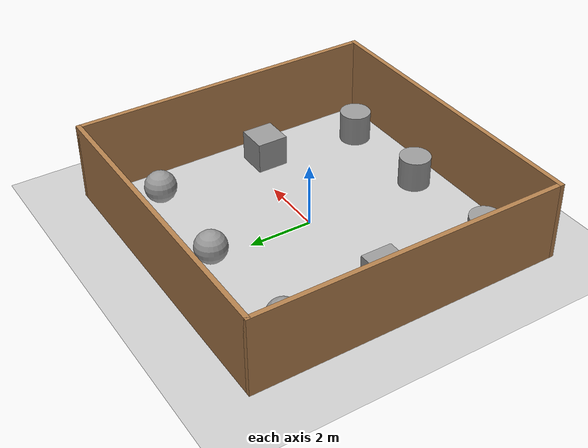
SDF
<sdf version="1.7">
 <world name="default">
  <light name="sun" type="directional">
   <pose>0 0 10 0 -0 0</pose>
   <diffuse>0.8 0.8 0.8 1</diffuse>
   <specular>0.2 0.2 0.2 1</specular>
   <attenuation>
    <range>1000</range>
    <constant>0.9</constant>
    <linear>0.01</linear>
    <quadratic>0.001</quadratic>
   </attenuation>
   <direction>-0.5 0.1 -0.9</direction>
   <spot><inner_angle>0</inner_angle><outer_angle>0</outer_angle><falloff>0</falloff></spot>
  </light>
  <model name="ground_plane">
   <static>1</static>
   <link name="link">
    <collision name="collision">
     <geometry><plane><normal>0 0 1</normal><size>100 100</size></plane></geometry>
     <surface>
      <contact><collide_bitmask>65535</collide_bitmask></contact>
      <friction><ode><mu>100</mu><mu2>50</mu2></ode></friction>
     </surface>
    </collision>
    <visual name="visual">
     <cast_shadows>0</cast_shadows>
     <geometry><plane><normal>0 0 1</normal><size>100 100</size></plane></geometry>
     <material>
      <script><uri>file://media/materials/scripts/gazebo.material</uri><name>Gazebo/Grey</name></script>
     </material>
    </visual>
   </link>
  </model>
  <gravity>0 0 -9.8</gravity>
  <magnetic_field>6e-06 2.3e-05 -4.2e-05</magnetic_field>
  <atmosphere type="adiabatic"/>
  <physics type="ode">
   <max_step_size>0.001</max_step_size>
   <real_time_factor>1</real_time_factor>
   <real_time_update_rate>1000</real_time_update_rate>
  </physics>
  <scene><ambient>0.4 0.4 0.4 1</ambient><background>0.7 0.7 0.7 1</background><shadows>1</shadows></scene>
  <spherical_coordinates>
   <surface_model>EARTH_WGS84</surface_model>
   <latitude_deg>0</latitude_deg>
   <longitude_deg>0</longitude_deg>
   <elevation>0</elevation>
   <heading_deg>0</heading_deg>
  </spherical_coordinates>
  <model name="map1.world">
   <pose>-0.086788 0.018696 0 0 -0 0</pose>
   <link name="Wall_0">
    <collision name="Wall_0_Collision">
     <geometry><box><size>10 0.15 2.5</size></box></geometry>
     <pose>0 0 1.25 0 -0 0</pose>
    </collision>
    <visual name="Wall_0_Visual">
     <pose>0 0 1.25 0 -0 0</pose>
     <geometry><box><size>10 0.15 2.5</size></box></geometry>
     <material>
      <script><uri>file://media/materials/scripts/gazebo.material</uri><name>Gazebo/Wood</name></script>
      <ambient>1 1 1 1</ambient>
     </material>
     <meta><layer>0</layer></meta>
    </visual>
    <pose>-4.925 0 0 0 -0 1.5708</pose>
   </link>
   <link name="Wall_1">
    <collision name="Wall_1_Collision">
     <geometry><box><size>10 0.15 2.5</size></box></geometry>
     <pose>0 0 1.25 0 -0 0</pose>
    </collision>
    <visual name="Wall_1_Visual">
     <pose>0 0 1.25 0 -0 0</pose>
     <geometry><box><size>10 0.15 2.5</size></box></geometry>
     <material>
      <script><uri>file://media/materials/scripts/gazebo.material</uri><name>Gazebo/Wood</name></script>
      <ambient>1 1 1 1</ambient>
     </material>
     <meta><layer>0</layer></meta>
    </visual>
    <pose>-0 4.925 0 0 -0 0</pose>
   </link>
   <link name="Wall_2">
    <collision name="Wall_2_Collision">
     <geometry><box><size>10 0.15 2.5</size></box></geometry>
     <pose>0 0 1.25 0 -0 0</pose>
    </collision>
    <visual name="Wall_2_Visual">
     <pose>0 0 1.25 0 -0 0</pose>
     <geometry><box><size>10 0.15 2.5</size></box></geometry>
     <material>
      <script><uri>file://media/materials/scripts/gazebo.material</uri><name>Gazebo/Wood</name></script>
      <ambient>1 1 1 1</ambient>
     </material>
     <meta><layer>0</layer></meta>
    </visual>
    <pose>4.925 0 0 0 -0 -1.5708</pose>
   </link>
   <link name="Wall_3">
    <collision name="Wall_3_Collision">
     <geometry><box><size>10 0.15 2.5</size></box></geometry>
     <pose>0 0 1.25 0 -0 0</pose>
    </collision>
    <visual name="Wall_3_Visual">
     <pose>0 0 1.25 0 -0 0</pose>
     <geometry><box><size>10 0.15 2.5</size></box></geometry>
     <material>
      <script><uri>file://media/materials/scripts/gazebo.material</uri><name>Gazebo/Wood</name></script>
      <ambient>1 1 1 1</ambient>
     </material>
     <meta><layer>0</layer></meta>
    </visual>
    <pose>-0 -4.925 0 0 -0 3.14159</pose>
   </link>
   <static>1</static>
  </model>
  <model name="unit_cylinder">
   <pose>3.1389 -3.82332 0.499998 3e-06 -4e-06 0</pose>
   <link name="link">
    <inertial>
     <mass>1</mass>
     <inertia><ixx>0.145833</ixx><ixy>0</ixy><ixz>0</ixz><iyy>0.145833</iyy><iyz>0</iyz><izz>0.125</izz></inertia>
    </inertial>
    <collision name="collision">
     <geometry><cylinder><radius>0.5</radius><length>1</length></cylinder></geometry>
    </collision>
    <visual name="visual">
     <geometry><cylinder><radius>0.5</radius><length>1</length></cylinder></geometry>
     <material>
      <script><name>Gazebo/Grey</name><uri>file://media/materials/scripts/gazebo.material</uri></script>
     </material>
    </visual>
   </link>
  </model>
  <model name="unit_cylinder_0">
   <pose>-0.020192 -3.86873 0.499992 -3e-06 4e-06 0</pose>
   <link name="link">
    <inertial>
     <mass>1</mass>
     <inertia><ixx>0.145833</ixx><ixy>0</ixy><ixz>0</ixz><iyy>0.145833</iyy><iyz>0</iyz><izz>0.125</izz></inertia>
    </inertial>
    <collision name="collision">
     <geometry><cylinder><radius>0.5</radius><length>1</length></cylinder></geometry>
    </collision>
    <visual name="visual">
     <geometry><cylinder><radius>0.5</radius><length>1</length></cylinder></geometry>
     <material>
      <script><name>Gazebo/Grey</name><uri>file://media/materials/scripts/gazebo.material</uri></script>
     </material>
    </visual>
   </link>
  </model>
  <model name="unit_cylinder_1">
   <pose>-3.56894 -3.66829 0.499992 -3e-06 4e-06 0</pose>
   <link name="link">
    <inertial>
     <mass>1</mass>
     <inertia><ixx>0.145833</ixx><ixy>0</ixy><ixz>0</ixz><iyy>0.145833</iyy><iyz>0</iyz><izz>0.125</izz></inertia>
    </inertial>
    <collision name="collision">
     <geometry><cylinder><radius>0.5</radius><length>1</length></cylinder></geometry>
    </collision>
    <visual name="visual">
     <geometry><cylinder><radius>0.5</radius><length>1</length></cylinder></geometry>
     <material>
      <script><name>Gazebo/Grey</name><uri>file://media/materials/scripts/gazebo.material</uri></script>
     </material>
    </visual>
   </link>
  </model>
  <model name="unit_sphere">
   <pose>3.42248 3.1563 0.5 0 -0 0</pose>
   <link name="link">
    <inertial>
     <mass>1</mass>
     <inertia><ixx>0.1</ixx><ixy>0</ixy><ixz>0</ixz><iyy>0.1</iyy><iyz>0</iyz><izz>0.1</izz></inertia>
    </inertial>
    <collision name="collision"><geometry><sphere><radius>0.5</radius></sphere></geometry></collision>
    <visual name="visual">
     <geometry><sphere><radius>0.5</radius></sphere></geometry>
     <material>
      <script><name>Gazebo/Grey</name><uri>file://media/materials/scripts/gazebo.material</uri></script>
     </material>
    </visual>
   </link>
  </model>
  <model name="unit_sphere_0">
   <pose>0.013812 3.27948 0.5 0 -0 0</pose>
   <link name="link">
    <inertial>
     <mass>1</mass>
     <inertia><ixx>0.1</ixx><ixy>0</ixy><ixz>0</ixz><iyy>0.1</iyy><iyz>0</iyz><izz>0.1</izz></inertia>
    </inertial>
    <collision name="collision"><geometry><sphere><radius>0.5</radius></sphere></geometry></collision>
    <visual name="visual">
     <geometry><sphere><radius>0.5</radius></sphere></geometry>
     <material>
      <script><name>Gazebo/Grey</name><uri>file://media/materials/scripts/gazebo.material</uri></script>
     </material>
    </visual>
   </link>
  </model>
  <model name="unit_sphere_1">
   <pose>-3.50891 3.05858 0.5 0 -0 0</pose>
   <link name="link">
    <inertial>
     <mass>1</mass>
     <inertia><ixx>0.1</ixx><ixy>0</ixy><ixz>0</ixz><iyy>0.1</iyy><iyz>0</iyz><izz>0.1</izz></inertia>
    </inertial>
    <collision name="collision"><geometry><sphere><radius>0.5</radius></sphere></geometry></collision>
    <visual name="visual">
     <geometry><sphere><radius>0.5</radius></sphere></geometry>
     <material>
      <script><name>Gazebo/Grey</name><uri>file://media/materials/scripts/gazebo.material</uri></script>
     </material>
    </visual>
   </link>
  </model>
  <model name="unit_box">
   <pose>3.55268 -0.608794 0.499995 -1e-05 -0 0</pose>
   <link name="link">
    <inertial>
     <mass>1</mass>
     <inertia>
      <ixx>0.166667</ixx>
      <ixy>0</ixy>
      <ixz>0</ixz>
      <iyy>0.166667</iyy>
      <iyz>0</iyz>
      <izz>0.166667</izz>
     </inertia>
    </inertial>
    <collision name="collision"><geometry><box><size>1 1 1</size></box></geometry></collision>
    <visual name="visual">
     <geometry><box><size>1 1 1</size></box></geometry>
     <material>
      <script><name>Gazebo/Grey</name><uri>file://media/materials/scripts/gazebo.material</uri></script>
     </material>
    </visual>
   </link>
  </model>
  <model name="unit_box_0">
   <pose>-3.6018 -0.16133 0.5 0 -0 0</pose>
   <link name="link">
    <inertial>
     <mass>1</mass>
     <inertia>
      <ixx>0.166667</ixx>
      <ixy>0</ixy>
      <ixz>0</ixz>
      <iyy>0.166667</iyy>
      <iyz>0</iyz>
      <izz>0.166667</izz>
     </inertia>
    </inertial>
    <collision name="collision"><geometry><box><size>1 1 1</size></box></geometry></collision>
    <visual name="visual">
     <geometry><box><size>1 1 1</size></box></geometry>
     <material>
      <script><name>Gazebo/Grey</name><uri>file://media/materials/scripts/gazebo.material</uri></script>
     </material>
    </visual>
   </link>
  </model>
  <light name="user_point_light_0" type="point">
   <pose>68.2001 520.76 1 0 -0 0</pose>
   <diffuse>0.5 0.5 0.5 1</diffuse>
   <specular>0.1 0.1 0.1 1</specular>
   <attenuation>
    <range>20</range>
    <constant>0.5</constant>
    <linear>0.01</linear>
    <quadratic>0.001</quadratic>
   </attenuation>
   <cast_shadows>0</cast_shadows>
   <direction>0 0 -1</direction>
  </light>
 </world>
</sdf>
